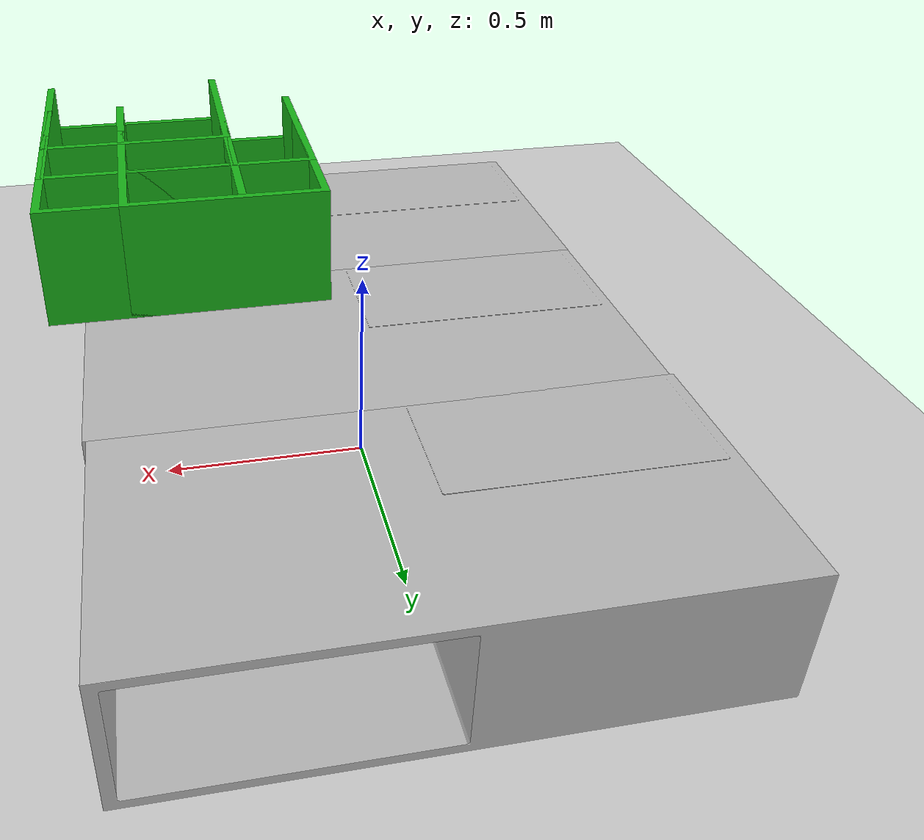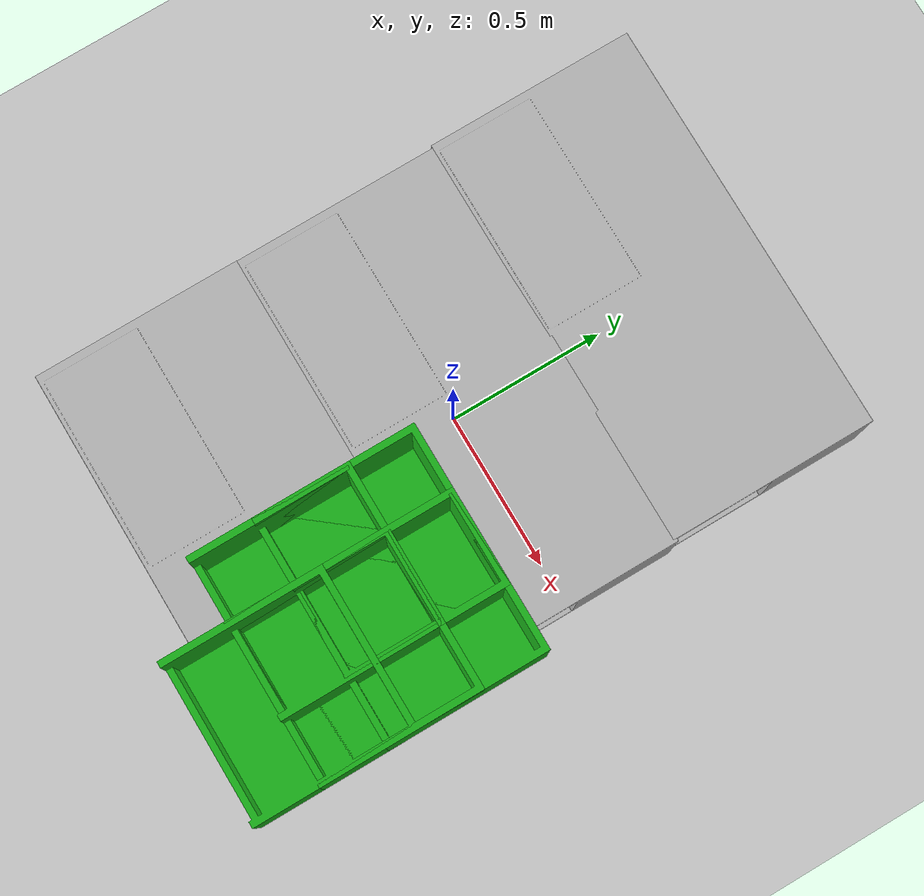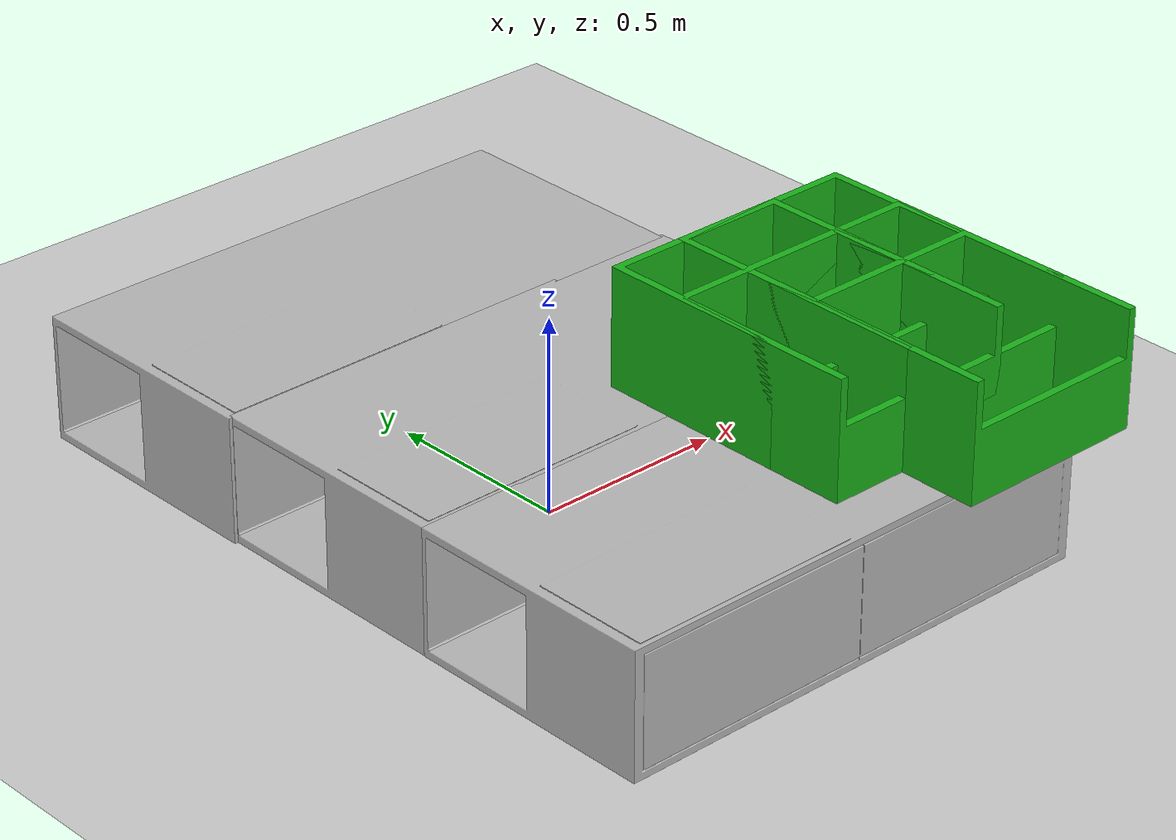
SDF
<sdf version="1.9">
 <world name="empty_world">
  <gravity>0 0 -9.8</gravity>
  <magnetic_field>6e-06 2.3e-05 -4.2e-05</magnetic_field>
  <atmosphere type="adiabatic"/>
  <physics type="ode">
   <max_step_size>0.001</max_step_size>
   <real_time_factor>1</real_time_factor>
   <real_time_update_rate>1000</real_time_update_rate>
  </physics>
  <scene><ambient>0.4 0.4 0.4 1</ambient><background>0.7 0.7 0.7 1</background><shadows>true</shadows></scene>
  <model name="green_box_0">
   <static>false</static>
   <include><uri>model://Green_Box</uri></include>
   <pose>0.3 -0.6 0.37 0 -0 0</pose>
  </model>
  <model name="green_box_1">
   <static>false</static>
   <include><uri>model://Green_Box</uri></include>
   <pose>0.5 -0.8 0.37 0 -0 0</pose>
  </model>
  <model name="green_box_2">
   <static>false</static>
   <include><uri>model://Green_Box</uri></include>
   <pose>0.5 -0.6 0.37 0 -0 0</pose>
  </model>
  <model name="green_box_3">
   <static>false</static>
   <include><uri>model://Green_Box</uri></include>
   <pose>0.5 -0.4 0.37 0 -0 0</pose>
  </model>
  <model name="green_box_4">
   <static>false</static>
   <include><uri>model://Green_Box</uri></include>
   <pose>0.3 -0.4 0.37 0 -0 0</pose>
  </model>
  <model name="CoffeeTable_1">
   <static>true</static>
   <model name="aws_robomaker_residential_CoffeeTable_01">
    <link name="link">
     <inertial>
      <mass>21.699999999999999</mass>
      <inertia>
       <ixx>0.81374999999999975</ixx>
       <ixy>0</ixy>
       <ixz>0</ixz>
       <iyy>2.76675</iyy>
       <iyz>0</iyz>
       <izz>3.254</izz>
      </inertia>
     </inertial>
     <collision name="collision">
      <geometry>
       <mesh>
        <uri>model://aws_robomaker_residential_CoffeeTable_01/meshes/aws_CoffeeTable_01_collision.DAE</uri>
        <scale>1 1 1</scale>
       </mesh>
      </geometry>
      <surface><contact><ode><max_vel>0.01</max_vel></ode></contact></surface>
     </collision>
     <visual name="visual">
      <geometry>
       <mesh><uri>model://aws_robomaker_residential_CoffeeTable_01/meshes/aws_CoffeeTable_01_visual.DAE</uri></mesh>
      </geometry>
      <meta><layer>1</layer></meta>
     </visual>
    </link>
    <static>true</static>
   </model>
   <pose>0 0 0.041983 0 -0 0</pose>
  </model>
  <model name="CoffeeTable_4">
   <static>true</static>
   <model name="aws_robomaker_residential_CoffeeTable_01">
    <link name="link">
     <inertial>
      <mass>21.699999999999999</mass>
      <inertia>
       <ixx>0.81374999999999975</ixx>
       <ixy>0</ixy>
       <ixz>0</ixz>
       <iyy>2.76675</iyy>
       <iyz>0</iyz>
       <izz>3.254</izz>
      </inertia>
     </inertial>
     <collision name="collision">
      <geometry>
       <mesh>
        <uri>model://aws_robomaker_residential_CoffeeTable_01/meshes/aws_CoffeeTable_01_collision.DAE</uri>
        <scale>1 1 1</scale>
       </mesh>
      </geometry>
      <surface><contact><ode><max_vel>0.01</max_vel></ode></contact></surface>
     </collision>
     <visual name="visual">
      <geometry>
       <mesh><uri>model://aws_robomaker_residential_CoffeeTable_01/meshes/aws_CoffeeTable_01_visual.DAE</uri></mesh>
      </geometry>
      <meta><layer>1</layer></meta>
     </visual>
    </link>
    <static>true</static>
   </model>
   <pose>-0.008642 0.643146 0.041983 0 -0 0</pose>
  </model>
  <model name="ground_plane">
   <static>true</static>
   <link name="link">
    <collision name="collision">
     <geometry><plane><normal>0 0 1</normal><size>1 1</size></plane></geometry>
    </collision>
    <visual name="visual">
     <geometry><plane><normal>0 0 1</normal><size>100 100</size></plane></geometry>
     <material>
      <ambient>0.8 0.8 0.8 1</ambient>
      <diffuse>0.8 0.8 0.8 1</diffuse>
      <specular>0.8 0.8 0.8 1</specular>
     </material>
    </visual>
    <inertial>
     <mass>1</mass>
     <inertia><ixx>1</ixx><ixy>0</ixy><ixz>0</ixz><iyy>1</iyy><iyz>0</iyz><izz>1</izz></inertia>
    </inertial>
   </link>
  </model>
  <model name="CoffeeTable_1_1">
   <static>true</static>
   <model name="aws_robomaker_residential_CoffeeTable_01">
    <link name="link">
     <inertial>
      <mass>21.699999999999999</mass>
      <inertia>
       <ixx>0.81374999999999975</ixx>
       <ixy>0</ixy>
       <ixz>0</ixz>
       <iyy>2.76675</iyy>
       <iyz>0</iyz>
       <izz>3.254</izz>
      </inertia>
     </inertial>
     <collision name="collision">
      <geometry>
       <mesh>
        <uri>model://aws_robomaker_residential_CoffeeTable_01/meshes/aws_CoffeeTable_01_collision.DAE</uri>
        <scale>1 1 1</scale>
       </mesh>
      </geometry>
      <surface><contact><ode><max_vel>0.01</max_vel></ode></contact></surface>
     </collision>
     <visual name="visual">
      <geometry>
       <mesh><uri>model://aws_robomaker_residential_CoffeeTable_01/meshes/aws_CoffeeTable_01_visual.DAE</uri></mesh>
      </geometry>
      <meta><layer>1</layer></meta>
     </visual>
    </link>
    <static>true</static>
   </model>
   <pose>-0.001145 -0.650275 0.041983 0 -0 0</pose>
  </model>
  <light name="sun" type="directional">
   <pose>0 0 10 0 -0 0</pose>
   <intensity>1</intensity>
   <direction>-0.5 0.1 -0.9</direction>
   <diffuse>0.8 0.8 0.8 1</diffuse>
   <specular>0.2 0.2 0.2 1</specular>
   <attenuation>
    <range>1000</range>
    <linear>0.01</linear>
    <constant>0.90000000000000002</constant>
    <quadratic>0.001</quadratic>
   </attenuation>
   <spot><inner_angle>0</inner_angle><outer_angle>0</outer_angle><falloff>0</falloff></spot>
  </light>
 </world>
</sdf>

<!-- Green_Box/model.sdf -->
<sdf version="1.6">
  <model name="Green_Box">
    <self_collide>false</self_collide>
    <link name="link">
      <inertial>
        <mass>1.0</mass>
      </inertial>
      <collision name="collision">
        <geometry>
          <mesh>
            <uri>model://Green_Box/meshes/Green_Box.stl</uri>
            <scale>1.0 1.0 1.0</scale>
          </mesh>
        </geometry>
        <surface>
          <contact>
            <ode>
              <max_vel>0.1</max_vel>
              <min_depth>0.001</min_depth>
            </ode>
          </contact>
        </surface>
      </collision>
      <visual name="visual">
        <geometry>
          <mesh>
            <uri>model://Green_Box/meshes/Green_Box.stl</uri>
            <scale>1.0 1.0 1.0</scale>
          </mesh>
        </geometry>
	<material>
	  <ambient>0.1 0.5 0.1 1.0</ambient> <!-- Soft green ambient color -->
	  <diffuse>0.1 0.7 0.1 1.0</diffuse> <!-- Bright green diffuse color -->
	  <specular>0.3 0.4 0.3 1.0</specular> <!-- Light greenish highlights -->
	  <emissive>0.0 0.0 0.0 1.0</emissive> <!-- No emissive color -->
	</material>
      </visual>
    </link>
    <static>0</static>
  </model>
</sdf>
